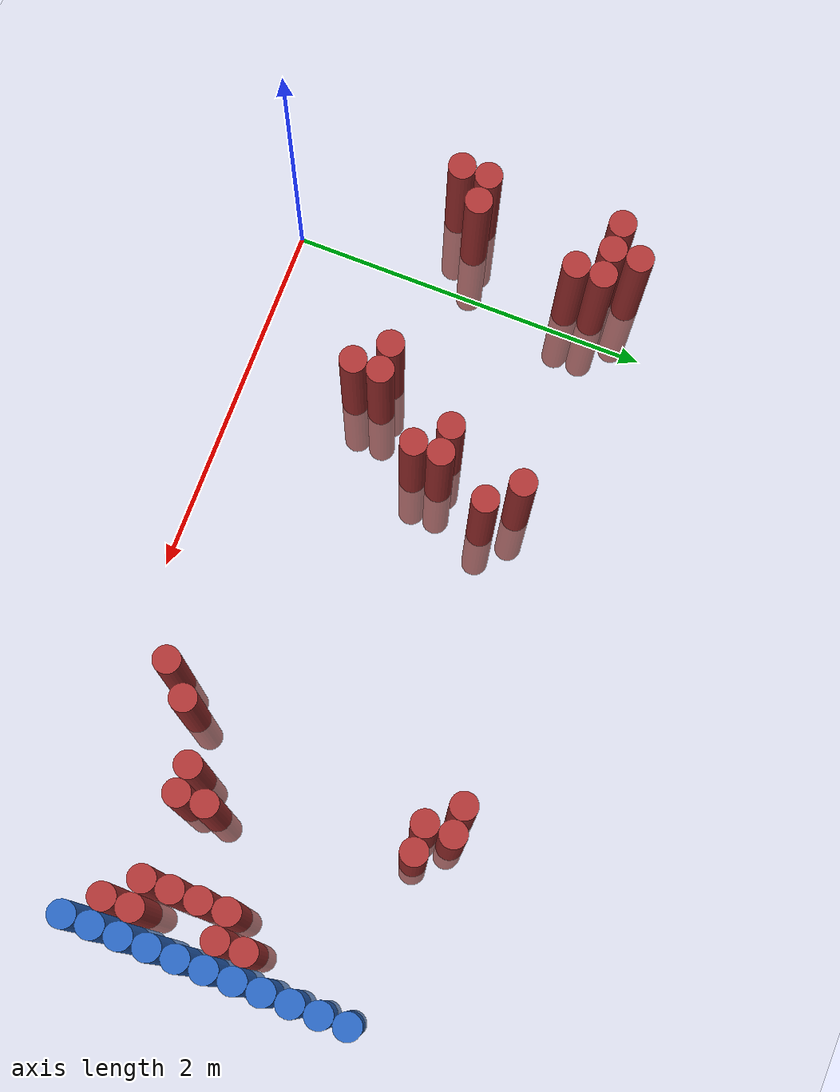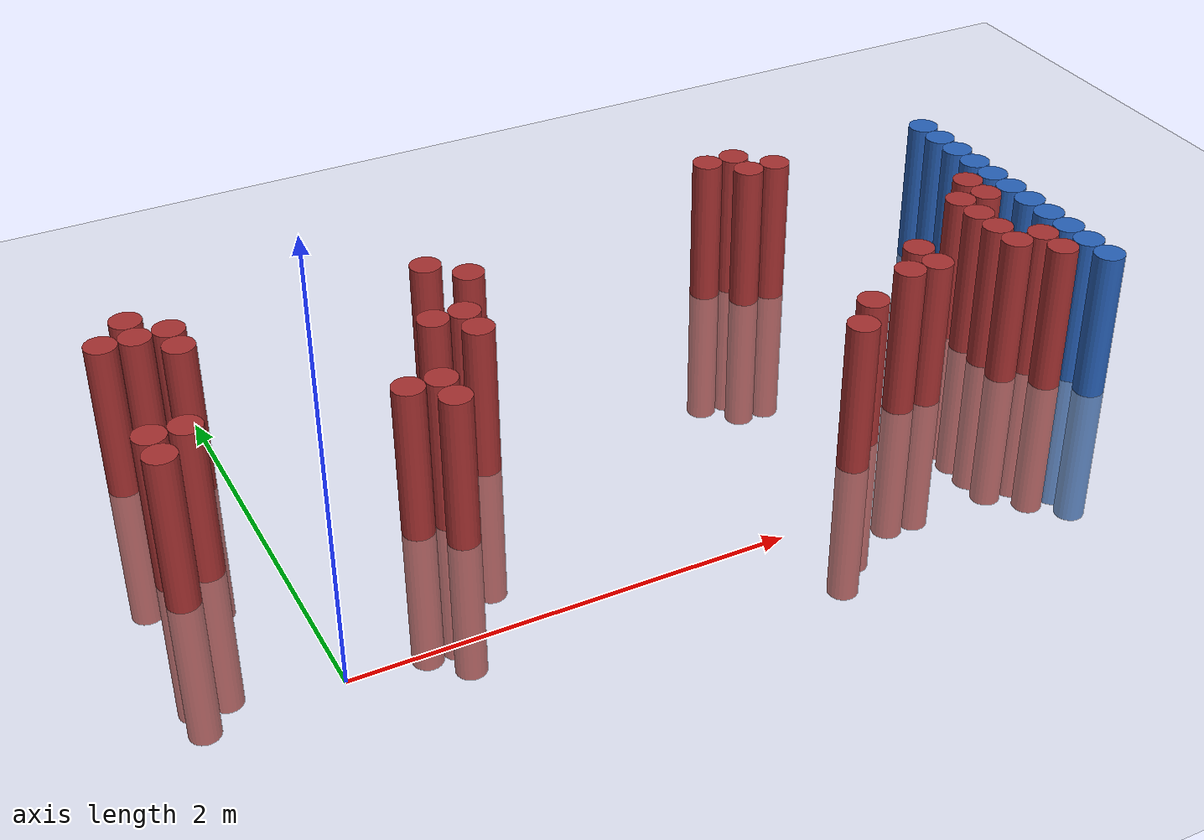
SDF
<sdf version="1.6">
 <world name="default">
  <model name="ground_plane">
   <static>1</static>
   <link name="link">
    <collision name="collision">
     <geometry><plane><normal>0 0 1</normal><size>100 100</size></plane></geometry>
     <surface><friction><ode><mu>100</mu><mu2>50</mu2></ode></friction></surface>
    </collision>
    <visual name="visual">
     <cast_shadows>0</cast_shadows>
     <geometry><plane><normal>0 0 1</normal><size>100 100</size></plane></geometry>
     <material>
      <script><uri>file://media/materials/scripts/gazebo.material</uri><name>Gazebo/Grey</name></script>
     </material>
    </visual>
   </link>
  </model>
  <model name="unit_cylinder_120">
   <static>1</static>
   <pose>3.925000 0.475000 0.000000 0.000000 0.000000 0.000000</pose>
   <link name="link">
    <inertial>
     <mass>1</mass>
     <inertia><ixx>0.145833</ixx><ixy>0</ixy><ixz>0</ixz><iyy>0.145833</iyy><iyz>0</iyz><izz>0.125</izz></inertia>
    </inertial>
    <collision name="collision">
     <geometry><cylinder><radius>0.075000</radius><length>1.5</length></cylinder></geometry>
    </collision>
    <visual name="visual">
     <geometry><cylinder><radius>0.075000</radius><length>1.5</length></cylinder></geometry>
     <material>
      <ambient>0.152000 0.379000 0.720000 1</ambient>
      <diffuse>0.152000 0.379000 0.720000 1</diffuse>
     </material>
     <material>
      <script><name>Gazebo/Grey</name><uri>file://media/materials/scripts/gazebo.material</uri></script>
     </material>
    </visual>
   </link>
  </model>
  <model name="unit_cylinder_122">
   <static>1</static>
   <pose>3.925000 0.625000 0.000000 0.000000 0.000000 0.000000</pose>
   <link name="link">
    <inertial>
     <mass>1</mass>
     <inertia><ixx>0.145833</ixx><ixy>0</ixy><ixz>0</ixz><iyy>0.145833</iyy><iyz>0</iyz><izz>0.125</izz></inertia>
    </inertial>
    <collision name="collision">
     <geometry><cylinder><radius>0.075000</radius><length>1.5</length></cylinder></geometry>
    </collision>
    <visual name="visual">
     <geometry><cylinder><radius>0.075000</radius><length>1.5</length></cylinder></geometry>
     <material>
      <ambient>0.152000 0.379000 0.720000 1</ambient>
      <diffuse>0.152000 0.379000 0.720000 1</diffuse>
     </material>
     <material>
      <script><name>Gazebo/Grey</name><uri>file://media/materials/scripts/gazebo.material</uri></script>
     </material>
    </visual>
   </link>
  </model>
  <model name="unit_cylinder_124">
   <static>1</static>
   <pose>3.925000 0.775000 0.000000 0.000000 0.000000 0.000000</pose>
   <link name="link">
    <inertial>
     <mass>1</mass>
     <inertia><ixx>0.145833</ixx><ixy>0</ixy><ixz>0</ixz><iyy>0.145833</iyy><iyz>0</iyz><izz>0.125</izz></inertia>
    </inertial>
    <collision name="collision">
     <geometry><cylinder><radius>0.075000</radius><length>1.5</length></cylinder></geometry>
    </collision>
    <visual name="visual">
     <geometry><cylinder><radius>0.075000</radius><length>1.5</length></cylinder></geometry>
     <material>
      <ambient>0.152000 0.379000 0.720000 1</ambient>
      <diffuse>0.152000 0.379000 0.720000 1</diffuse>
     </material>
     <material>
      <script><name>Gazebo/Grey</name><uri>file://media/materials/scripts/gazebo.material</uri></script>
     </material>
    </visual>
   </link>
  </model>
  <model name="unit_cylinder_126">
   <static>1</static>
   <pose>3.925000 0.925000 0.000000 0.000000 0.000000 0.000000</pose>
   <link name="link">
    <inertial>
     <mass>1</mass>
     <inertia><ixx>0.145833</ixx><ixy>0</ixy><ixz>0</ixz><iyy>0.145833</iyy><iyz>0</iyz><izz>0.125</izz></inertia>
    </inertial>
    <collision name="collision">
     <geometry><cylinder><radius>0.075000</radius><length>1.5</length></cylinder></geometry>
    </collision>
    <visual name="visual">
     <geometry><cylinder><radius>0.075000</radius><length>1.5</length></cylinder></geometry>
     <material>
      <ambient>0.152000 0.379000 0.720000 1</ambient>
      <diffuse>0.152000 0.379000 0.720000 1</diffuse>
     </material>
     <material>
      <script><name>Gazebo/Grey</name><uri>file://media/materials/scripts/gazebo.material</uri></script>
     </material>
    </visual>
   </link>
  </model>
  <model name="unit_cylinder_128">
   <static>1</static>
   <pose>3.925000 1.075000 0.000000 0.000000 0.000000 0.000000</pose>
   <link name="link">
    <inertial>
     <mass>1</mass>
     <inertia><ixx>0.145833</ixx><ixy>0</ixy><ixz>0</ixz><iyy>0.145833</iyy><iyz>0</iyz><izz>0.125</izz></inertia>
    </inertial>
    <collision name="collision">
     <geometry><cylinder><radius>0.075000</radius><length>1.5</length></cylinder></geometry>
    </collision>
    <visual name="visual">
     <geometry><cylinder><radius>0.075000</radius><length>1.5</length></cylinder></geometry>
     <material>
      <ambient>0.152000 0.379000 0.720000 1</ambient>
      <diffuse>0.152000 0.379000 0.720000 1</diffuse>
     </material>
     <material>
      <script><name>Gazebo/Grey</name><uri>file://media/materials/scripts/gazebo.material</uri></script>
     </material>
    </visual>
   </link>
  </model>
  <model name="unit_cylinder_130">
   <static>1</static>
   <pose>3.925000 1.225000 0.000000 0.000000 0.000000 0.000000</pose>
   <link name="link">
    <inertial>
     <mass>1</mass>
     <inertia><ixx>0.145833</ixx><ixy>0</ixy><ixz>0</ixz><iyy>0.145833</iyy><iyz>0</iyz><izz>0.125</izz></inertia>
    </inertial>
    <collision name="collision">
     <geometry><cylinder><radius>0.075000</radius><length>1.5</length></cylinder></geometry>
    </collision>
    <visual name="visual">
     <geometry><cylinder><radius>0.075000</radius><length>1.5</length></cylinder></geometry>
     <material>
      <ambient>0.152000 0.379000 0.720000 1</ambient>
      <diffuse>0.152000 0.379000 0.720000 1</diffuse>
     </material>
     <material>
      <script><name>Gazebo/Grey</name><uri>file://media/materials/scripts/gazebo.material</uri></script>
     </material>
    </visual>
   </link>
  </model>
  <model name="unit_cylinder_132">
   <static>1</static>
   <pose>3.925000 1.375000 0.000000 0.000000 0.000000 0.000000</pose>
   <link name="link">
    <inertial>
     <mass>1</mass>
     <inertia><ixx>0.145833</ixx><ixy>0</ixy><ixz>0</ixz><iyy>0.145833</iyy><iyz>0</iyz><izz>0.125</izz></inertia>
    </inertial>
    <collision name="collision">
     <geometry><cylinder><radius>0.075000</radius><length>1.5</length></cylinder></geometry>
    </collision>
    <visual name="visual">
     <geometry><cylinder><radius>0.075000</radius><length>1.5</length></cylinder></geometry>
     <material>
      <ambient>0.152000 0.379000 0.720000 1</ambient>
      <diffuse>0.152000 0.379000 0.720000 1</diffuse>
     </material>
     <material>
      <script><name>Gazebo/Grey</name><uri>file://media/materials/scripts/gazebo.material</uri></script>
     </material>
    </visual>
   </link>
  </model>
  <model name="unit_cylinder_134">
   <static>1</static>
   <pose>3.925000 1.525000 0.000000 0.000000 0.000000 0.000000</pose>
   <link name="link">
    <inertial>
     <mass>1</mass>
     <inertia><ixx>0.145833</ixx><ixy>0</ixy><ixz>0</ixz><iyy>0.145833</iyy><iyz>0</iyz><izz>0.125</izz></inertia>
    </inertial>
    <collision name="collision">
     <geometry><cylinder><radius>0.075000</radius><length>1.5</length></cylinder></geometry>
    </collision>
    <visual name="visual">
     <geometry><cylinder><radius>0.075000</radius><length>1.5</length></cylinder></geometry>
     <material>
      <ambient>0.152000 0.379000 0.720000 1</ambient>
      <diffuse>0.152000 0.379000 0.720000 1</diffuse>
     </material>
     <material>
      <script><name>Gazebo/Grey</name><uri>file://media/materials/scripts/gazebo.material</uri></script>
     </material>
    </visual>
   </link>
  </model>
  <model name="unit_cylinder_136">
   <static>1</static>
   <pose>3.925000 1.675000 0.000000 0.000000 0.000000 0.000000</pose>
   <link name="link">
    <inertial>
     <mass>1</mass>
     <inertia><ixx>0.145833</ixx><ixy>0</ixy><ixz>0</ixz><iyy>0.145833</iyy><iyz>0</iyz><izz>0.125</izz></inertia>
    </inertial>
    <collision name="collision">
     <geometry><cylinder><radius>0.075000</radius><length>1.5</length></cylinder></geometry>
    </collision>
    <visual name="visual">
     <geometry><cylinder><radius>0.075000</radius><length>1.5</length></cylinder></geometry>
     <material>
      <ambient>0.152000 0.379000 0.720000 1</ambient>
      <diffuse>0.152000 0.379000 0.720000 1</diffuse>
     </material>
     <material>
      <script><name>Gazebo/Grey</name><uri>file://media/materials/scripts/gazebo.material</uri></script>
     </material>
    </visual>
   </link>
  </model>
  <model name="unit_cylinder_138">
   <static>1</static>
   <pose>3.925000 1.825000 0.000000 0.000000 0.000000 0.000000</pose>
   <link name="link">
    <inertial>
     <mass>1</mass>
     <inertia><ixx>0.145833</ixx><ixy>0</ixy><ixz>0</ixz><iyy>0.145833</iyy><iyz>0</iyz><izz>0.125</izz></inertia>
    </inertial>
    <collision name="collision">
     <geometry><cylinder><radius>0.075000</radius><length>1.5</length></cylinder></geometry>
    </collision>
    <visual name="visual">
     <geometry><cylinder><radius>0.075000</radius><length>1.5</length></cylinder></geometry>
     <material>
      <ambient>0.152000 0.379000 0.720000 1</ambient>
      <diffuse>0.152000 0.379000 0.720000 1</diffuse>
     </material>
     <material>
      <script><name>Gazebo/Grey</name><uri>file://media/materials/scripts/gazebo.material</uri></script>
     </material>
    </visual>
   </link>
  </model>
  <model name="unit_cylinder_315">
   <static>1</static>
   <pose>-0.425000 0.775000 0.000000 0.000000 0.000000 0.000000</pose>
   <link name="link">
    <inertial>
     <mass>1</mass>
     <inertia><ixx>0.145833</ixx><ixy>0</ixy><ixz>0</ixz><iyy>0.145833</iyy><iyz>0</iyz><izz>0.125</izz></inertia>
    </inertial>
    <collision name="collision">
     <geometry><cylinder><radius>0.075000</radius><length>1.5</length></cylinder></geometry>
    </collision>
    <visual name="visual">
     <geometry><cylinder><radius>0.075000</radius><length>1.5</length></cylinder></geometry>
     <material>
      <ambient>0.648000 0.192000 0.192000 1</ambient>
      <diffuse>0.648000 0.192000 0.192000 1</diffuse>
     </material>
     <material>
      <script><name>Gazebo/Grey</name><uri>file://media/materials/scripts/gazebo.material</uri></script>
     </material>
    </visual>
   </link>
  </model>
  <model name="unit_cylinder_316">
   <static>1</static>
   <pose>-0.425000 0.925000 0.000000 0.000000 0.000000 0.000000</pose>
   <link name="link">
    <inertial>
     <mass>1</mass>
     <inertia><ixx>0.145833</ixx><ixy>0</ixy><ixz>0</ixz><iyy>0.145833</iyy><iyz>0</iyz><izz>0.125</izz></inertia>
    </inertial>
    <collision name="collision">
     <geometry><cylinder><radius>0.075000</radius><length>1.5</length></cylinder></geometry>
    </collision>
    <visual name="visual">
     <geometry><cylinder><radius>0.075000</radius><length>1.5</length></cylinder></geometry>
     <material>
      <ambient>0.648000 0.192000 0.192000 1</ambient>
      <diffuse>0.648000 0.192000 0.192000 1</diffuse>
     </material>
     <material>
      <script><name>Gazebo/Grey</name><uri>file://media/materials/scripts/gazebo.material</uri></script>
     </material>
    </visual>
   </link>
  </model>
  <model name="unit_cylinder_317">
   <static>1</static>
   <pose>-0.425000 1.675000 0.000000 0.000000 0.000000 0.000000</pose>
   <link name="link">
    <inertial>
     <mass>1</mass>
     <inertia><ixx>0.145833</ixx><ixy>0</ixy><ixz>0</ixz><iyy>0.145833</iyy><iyz>0</iyz><izz>0.125</izz></inertia>
    </inertial>
    <collision name="collision">
     <geometry><cylinder><radius>0.075000</radius><length>1.5</length></cylinder></geometry>
    </collision>
    <visual name="visual">
     <geometry><cylinder><radius>0.075000</radius><length>1.5</length></cylinder></geometry>
     <material>
      <ambient>0.648000 0.192000 0.192000 1</ambient>
      <diffuse>0.648000 0.192000 0.192000 1</diffuse>
     </material>
     <material>
      <script><name>Gazebo/Grey</name><uri>file://media/materials/scripts/gazebo.material</uri></script>
     </material>
    </visual>
   </link>
  </model>
  <model name="unit_cylinder_324">
   <static>1</static>
   <pose>-0.275000 0.925000 0.000000 0.000000 0.000000 0.000000</pose>
   <link name="link">
    <inertial>
     <mass>1</mass>
     <inertia><ixx>0.145833</ixx><ixy>0</ixy><ixz>0</ixz><iyy>0.145833</iyy><iyz>0</iyz><izz>0.125</izz></inertia>
    </inertial>
    <collision name="collision">
     <geometry><cylinder><radius>0.075000</radius><length>1.5</length></cylinder></geometry>
    </collision>
    <visual name="visual">
     <geometry><cylinder><radius>0.075000</radius><length>1.5</length></cylinder></geometry>
     <material>
      <ambient>0.648000 0.192000 0.192000 1</ambient>
      <diffuse>0.648000 0.192000 0.192000 1</diffuse>
     </material>
     <material>
      <script><name>Gazebo/Grey</name><uri>file://media/materials/scripts/gazebo.material</uri></script>
     </material>
    </visual>
   </link>
  </model>
  <model name="unit_cylinder_325">
   <static>1</static>
   <pose>-0.275000 1.675000 0.000000 0.000000 0.000000 0.000000</pose>
   <link name="link">
    <inertial>
     <mass>1</mass>
     <inertia><ixx>0.145833</ixx><ixy>0</ixy><ixz>0</ixz><iyy>0.145833</iyy><iyz>0</iyz><izz>0.125</izz></inertia>
    </inertial>
    <collision name="collision">
     <geometry><cylinder><radius>0.075000</radius><length>1.5</length></cylinder></geometry>
    </collision>
    <visual name="visual">
     <geometry><cylinder><radius>0.075000</radius><length>1.5</length></cylinder></geometry>
     <material>
      <ambient>0.648000 0.192000 0.192000 1</ambient>
      <diffuse>0.648000 0.192000 0.192000 1</diffuse>
     </material>
     <material>
      <script><name>Gazebo/Grey</name><uri>file://media/materials/scripts/gazebo.material</uri></script>
     </material>
    </visual>
   </link>
  </model>
  <model name="unit_cylinder_326">
   <static>1</static>
   <pose>-0.275000 1.825000 0.000000 0.000000 0.000000 0.000000</pose>
   <link name="link">
    <inertial>
     <mass>1</mass>
     <inertia><ixx>0.145833</ixx><ixy>0</ixy><ixz>0</ixz><iyy>0.145833</iyy><iyz>0</iyz><izz>0.125</izz></inertia>
    </inertial>
    <collision name="collision">
     <geometry><cylinder><radius>0.075000</radius><length>1.5</length></cylinder></geometry>
    </collision>
    <visual name="visual">
     <geometry><cylinder><radius>0.075000</radius><length>1.5</length></cylinder></geometry>
     <material>
      <ambient>0.648000 0.192000 0.192000 1</ambient>
      <diffuse>0.648000 0.192000 0.192000 1</diffuse>
     </material>
     <material>
      <script><name>Gazebo/Grey</name><uri>file://media/materials/scripts/gazebo.material</uri></script>
     </material>
    </visual>
   </link>
  </model>
  <model name="unit_cylinder_327">
   <static>1</static>
   <pose>-0.125000 1.525000 0.000000 0.000000 0.000000 0.000000</pose>
   <link name="link">
    <inertial>
     <mass>1</mass>
     <inertia><ixx>0.145833</ixx><ixy>0</ixy><ixz>0</ixz><iyy>0.145833</iyy><iyz>0</iyz><izz>0.125</izz></inertia>
    </inertial>
    <collision name="collision">
     <geometry><cylinder><radius>0.075000</radius><length>1.5</length></cylinder></geometry>
    </collision>
    <visual name="visual">
     <geometry><cylinder><radius>0.075000</radius><length>1.5</length></cylinder></geometry>
     <material>
      <ambient>0.648000 0.192000 0.192000 1</ambient>
      <diffuse>0.648000 0.192000 0.192000 1</diffuse>
     </material>
     <material>
      <script><name>Gazebo/Grey</name><uri>file://media/materials/scripts/gazebo.material</uri></script>
     </material>
    </visual>
   </link>
  </model>
  <model name="unit_cylinder_328">
   <static>1</static>
   <pose>-0.125000 1.675000 0.000000 0.000000 0.000000 0.000000</pose>
   <link name="link">
    <inertial>
     <mass>1</mass>
     <inertia><ixx>0.145833</ixx><ixy>0</ixy><ixz>0</ixz><iyy>0.145833</iyy><iyz>0</iyz><izz>0.125</izz></inertia>
    </inertial>
    <collision name="collision">
     <geometry><cylinder><radius>0.075000</radius><length>1.5</length></cylinder></geometry>
    </collision>
    <visual name="visual">
     <geometry><cylinder><radius>0.075000</radius><length>1.5</length></cylinder></geometry>
     <material>
      <ambient>0.648000 0.192000 0.192000 1</ambient>
      <diffuse>0.648000 0.192000 0.192000 1</diffuse>
     </material>
     <material>
      <script><name>Gazebo/Grey</name><uri>file://media/materials/scripts/gazebo.material</uri></script>
     </material>
    </visual>
   </link>
  </model>
  <model name="unit_cylinder_332">
   <static>1</static>
   <pose>0.625000 0.775000 0.000000 0.000000 0.000000 0.000000</pose>
   <link name="link">
    <inertial>
     <mass>1</mass>
     <inertia><ixx>0.145833</ixx><ixy>0</ixy><ixz>0</ixz><iyy>0.145833</iyy><iyz>0</iyz><izz>0.125</izz></inertia>
    </inertial>
    <collision name="collision">
     <geometry><cylinder><radius>0.075000</radius><length>1.5</length></cylinder></geometry>
    </collision>
    <visual name="visual">
     <geometry><cylinder><radius>0.075000</radius><length>1.5</length></cylinder></geometry>
     <material>
      <ambient>0.648000 0.192000 0.192000 1</ambient>
      <diffuse>0.648000 0.192000 0.192000 1</diffuse>
     </material>
     <material>
      <script><name>Gazebo/Grey</name><uri>file://media/materials/scripts/gazebo.material</uri></script>
     </material>
    </visual>
   </link>
  </model>
  <model name="unit_cylinder_334">
   <static>1</static>
   <pose>0.775000 0.625000 0.000000 0.000000 0.000000 0.000000</pose>
   <link name="link">
    <inertial>
     <mass>1</mass>
     <inertia><ixx>0.145833</ixx><ixy>0</ixy><ixz>0</ixz><iyy>0.145833</iyy><iyz>0</iyz><izz>0.125</izz></inertia>
    </inertial>
    <collision name="collision">
     <geometry><cylinder><radius>0.075000</radius><length>1.5</length></cylinder></geometry>
    </collision>
    <visual name="visual">
     <geometry><cylinder><radius>0.075000</radius><length>1.5</length></cylinder></geometry>
     <material>
      <ambient>0.648000 0.192000 0.192000 1</ambient>
      <diffuse>0.648000 0.192000 0.192000 1</diffuse>
     </material>
     <material>
      <script><name>Gazebo/Grey</name><uri>file://media/materials/scripts/gazebo.material</uri></script>
     </material>
    </visual>
   </link>
  </model>
  <model name="unit_cylinder_335">
   <static>1</static>
   <pose>0.775000 0.775000 0.000000 0.000000 0.000000 0.000000</pose>
   <link name="link">
    <inertial>
     <mass>1</mass>
     <inertia><ixx>0.145833</ixx><ixy>0</ixy><ixz>0</ixz><iyy>0.145833</iyy><iyz>0</iyz><izz>0.125</izz></inertia>
    </inertial>
    <collision name="collision">
     <geometry><cylinder><radius>0.075000</radius><length>1.5</length></cylinder></geometry>
    </collision>
    <visual name="visual">
     <geometry><cylinder><radius>0.075000</radius><length>1.5</length></cylinder></geometry>
     <material>
      <ambient>0.648000 0.192000 0.192000 1</ambient>
      <diffuse>0.648000 0.192000 0.192000 1</diffuse>
     </material>
     <material>
      <script><name>Gazebo/Grey</name><uri>file://media/materials/scripts/gazebo.material</uri></script>
     </material>
    </visual>
   </link>
  </model>
  <model name="unit_cylinder_337">
   <static>1</static>
   <pose>0.925000 1.225000 0.000000 0.000000 0.000000 0.000000</pose>
   <link name="link">
    <inertial>
     <mass>1</mass>
     <inertia><ixx>0.145833</ixx><ixy>0</ixy><ixz>0</ixz><iyy>0.145833</iyy><iyz>0</iyz><izz>0.125</izz></inertia>
    </inertial>
    <collision name="collision">
     <geometry><cylinder><radius>0.075000</radius><length>1.5</length></cylinder></geometry>
    </collision>
    <visual name="visual">
     <geometry><cylinder><radius>0.075000</radius><length>1.5</length></cylinder></geometry>
     <material>
      <ambient>0.648000 0.192000 0.192000 1</ambient>
      <diffuse>0.648000 0.192000 0.192000 1</diffuse>
     </material>
     <material>
      <script><name>Gazebo/Grey</name><uri>file://media/materials/scripts/gazebo.material</uri></script>
     </material>
    </visual>
   </link>
  </model>
  <model name="unit_cylinder_344">
   <static>1</static>
   <pose>1.075000 1.075000 0.000000 0.000000 0.000000 0.000000</pose>
   <link name="link">
    <inertial>
     <mass>1</mass>
     <inertia><ixx>0.145833</ixx><ixy>0</ixy><ixz>0</ixz><iyy>0.145833</iyy><iyz>0</iyz><izz>0.125</izz></inertia>
    </inertial>
    <collision name="collision">
     <geometry><cylinder><radius>0.075000</radius><length>1.5</length></cylinder></geometry>
    </collision>
    <visual name="visual">
     <geometry><cylinder><radius>0.075000</radius><length>1.5</length></cylinder></geometry>
     <material>
      <ambient>0.648000 0.192000 0.192000 1</ambient>
      <diffuse>0.648000 0.192000 0.192000 1</diffuse>
     </material>
     <material>
      <script><name>Gazebo/Grey</name><uri>file://media/materials/scripts/gazebo.material</uri></script>
     </material>
    </visual>
   </link>
  </model>
  <model name="unit_cylinder_345">
   <static>1</static>
   <pose>1.075000 1.225000 0.000000 0.000000 0.000000 0.000000</pose>
   <link name="link">
    <inertial>
     <mass>1</mass>
     <inertia><ixx>0.145833</ixx><ixy>0</ixy><ixz>0</ixz><iyy>0.145833</iyy><iyz>0</iyz><izz>0.125</izz></inertia>
    </inertial>
    <collision name="collision">
     <geometry><cylinder><radius>0.075000</radius><length>1.5</length></cylinder></geometry>
    </collision>
    <visual name="visual">
     <geometry><cylinder><radius>0.075000</radius><length>1.5</length></cylinder></geometry>
     <material>
      <ambient>0.648000 0.192000 0.192000 1</ambient>
      <diffuse>0.648000 0.192000 0.192000 1</diffuse>
     </material>
     <material>
      <script><name>Gazebo/Grey</name><uri>file://media/materials/scripts/gazebo.material</uri></script>
     </material>
    </visual>
   </link>
  </model>
  <model name="unit_cylinder_346">
   <static>1</static>
   <pose>1.075000 1.675000 0.000000 0.000000 0.000000 0.000000</pose>
   <link name="link">
    <inertial>
     <mass>1</mass>
     <inertia><ixx>0.145833</ixx><ixy>0</ixy><ixz>0</ixz><iyy>0.145833</iyy><iyz>0</iyz><izz>0.125</izz></inertia>
    </inertial>
    <collision name="collision">
     <geometry><cylinder><radius>0.075000</radius><length>1.5</length></cylinder></geometry>
    </collision>
    <visual name="visual">
     <geometry><cylinder><radius>0.075000</radius><length>1.5</length></cylinder></geometry>
     <material>
      <ambient>0.648000 0.192000 0.192000 1</ambient>
      <diffuse>0.648000 0.192000 0.192000 1</diffuse>
     </material>
     <material>
      <script><name>Gazebo/Grey</name><uri>file://media/materials/scripts/gazebo.material</uri></script>
     </material>
    </visual>
   </link>
  </model>
  <model name="unit_cylinder_349">
   <static>1</static>
   <pose>1.225000 1.525000 0.000000 0.000000 0.000000 0.000000</pose>
   <link name="link">
    <inertial>
     <mass>1</mass>
     <inertia><ixx>0.145833</ixx><ixy>0</ixy><ixz>0</ixz><iyy>0.145833</iyy><iyz>0</iyz><izz>0.125</izz></inertia>
    </inertial>
    <collision name="collision">
     <geometry><cylinder><radius>0.075000</radius><length>1.5</length></cylinder></geometry>
    </collision>
    <visual name="visual">
     <geometry><cylinder><radius>0.075000</radius><length>1.5</length></cylinder></geometry>
     <material>
      <ambient>0.648000 0.192000 0.192000 1</ambient>
      <diffuse>0.648000 0.192000 0.192000 1</diffuse>
     </material>
     <material>
      <script><name>Gazebo/Grey</name><uri>file://media/materials/scripts/gazebo.material</uri></script>
     </material>
    </visual>
   </link>
  </model>
  <model name="unit_cylinder_382">
   <static>1</static>
   <pose>2.575000 0.325000 0.000000 0.000000 0.000000 0.000000</pose>
   <link name="link">
    <inertial>
     <mass>1</mass>
     <inertia><ixx>0.145833</ixx><ixy>0</ixy><ixz>0</ixz><iyy>0.145833</iyy><iyz>0</iyz><izz>0.125</izz></inertia>
    </inertial>
    <collision name="collision">
     <geometry><cylinder><radius>0.075000</radius><length>1.5</length></cylinder></geometry>
    </collision>
    <visual name="visual">
     <geometry><cylinder><radius>0.075000</radius><length>1.5</length></cylinder></geometry>
     <material>
      <ambient>0.648000 0.192000 0.192000 1</ambient>
      <diffuse>0.648000 0.192000 0.192000 1</diffuse>
     </material>
     <material>
      <script><name>Gazebo/Grey</name><uri>file://media/materials/scripts/gazebo.material</uri></script>
     </material>
    </visual>
   </link>
  </model>
  <model name="unit_cylinder_384">
   <static>1</static>
   <pose>2.725000 0.475000 0.000000 0.000000 0.000000 0.000000</pose>
   <link name="link">
    <inertial>
     <mass>1</mass>
     <inertia><ixx>0.145833</ixx><ixy>0</ixy><ixz>0</ixz><iyy>0.145833</iyy><iyz>0</iyz><izz>0.125</izz></inertia>
    </inertial>
    <collision name="collision">
     <geometry><cylinder><radius>0.075000</radius><length>1.5</length></cylinder></geometry>
    </collision>
    <visual name="visual">
     <geometry><cylinder><radius>0.075000</radius><length>1.5</length></cylinder></geometry>
     <material>
      <ambient>0.648000 0.192000 0.192000 1</ambient>
      <diffuse>0.648000 0.192000 0.192000 1</diffuse>
     </material>
     <material>
      <script><name>Gazebo/Grey</name><uri>file://media/materials/scripts/gazebo.material</uri></script>
     </material>
    </visual>
   </link>
  </model>
  <model name="unit_cylinder_385">
   <static>1</static>
   <pose>2.725000 1.975000 0.000000 0.000000 0.000000 0.000000</pose>
   <link name="link">
    <inertial>
     <mass>1</mass>
     <inertia><ixx>0.145833</ixx><ixy>0</ixy><ixz>0</ixz><iyy>0.145833</iyy><iyz>0</iyz><izz>0.125</izz></inertia>
    </inertial>
    <collision name="collision">
     <geometry><cylinder><radius>0.075000</radius><length>1.5</length></cylinder></geometry>
    </collision>
    <visual name="visual">
     <geometry><cylinder><radius>0.075000</radius><length>1.5</length></cylinder></geometry>
     <material>
      <ambient>0.648000 0.192000 0.192000 1</ambient>
      <diffuse>0.648000 0.192000 0.192000 1</diffuse>
     </material>
     <material>
      <script><name>Gazebo/Grey</name><uri>file://media/materials/scripts/gazebo.material</uri></script>
     </material>
    </visual>
   </link>
  </model>
  <model name="unit_cylinder_388">
   <static>1</static>
   <pose>2.875000 1.825000 0.000000 0.000000 0.000000 0.000000</pose>
   <link name="link">
    <inertial>
     <mass>1</mass>
     <inertia><ixx>0.145833</ixx><ixy>0</ixy><ixz>0</ixz><iyy>0.145833</iyy><iyz>0</iyz><izz>0.125</izz></inertia>
    </inertial>
    <collision name="collision">
     <geometry><cylinder><radius>0.075000</radius><length>1.5</length></cylinder></geometry>
    </collision>
    <visual name="visual">
     <geometry><cylinder><radius>0.075000</radius><length>1.5</length></cylinder></geometry>
     <material>
      <ambient>0.648000 0.192000 0.192000 1</ambient>
      <diffuse>0.648000 0.192000 0.192000 1</diffuse>
     </material>
     <material>
      <script><name>Gazebo/Grey</name><uri>file://media/materials/scripts/gazebo.material</uri></script>
     </material>
    </visual>
   </link>
  </model>
  <model name="unit_cylinder_389">
   <static>1</static>
   <pose>2.875000 1.975000 0.000000 0.000000 0.000000 0.000000</pose>
   <link name="link">
    <inertial>
     <mass>1</mass>
     <inertia><ixx>0.145833</ixx><ixy>0</ixy><ixz>0</ixz><iyy>0.145833</iyy><iyz>0</iyz><izz>0.125</izz></inertia>
    </inertial>
    <collision name="collision">
     <geometry><cylinder><radius>0.075000</radius><length>1.5</length></cylinder></geometry>
    </collision>
    <visual name="visual">
     <geometry><cylinder><radius>0.075000</radius><length>1.5</length></cylinder></geometry>
     <material>
      <ambient>0.648000 0.192000 0.192000 1</ambient>
      <diffuse>0.648000 0.192000 0.192000 1</diffuse>
     </material>
     <material>
      <script><name>Gazebo/Grey</name><uri>file://media/materials/scripts/gazebo.material</uri></script>
     </material>
    </visual>
   </link>
  </model>
  <model name="unit_cylinder_396">
   <static>1</static>
   <pose>3.025000 0.625000 0.000000 0.000000 0.000000 0.000000</pose>
   <link name="link">
    <inertial>
     <mass>1</mass>
     <inertia><ixx>0.145833</ixx><ixy>0</ixy><ixz>0</ixz><iyy>0.145833</iyy><iyz>0</iyz><izz>0.125</izz></inertia>
    </inertial>
    <collision name="collision">
     <geometry><cylinder><radius>0.075000</radius><length>1.5</length></cylinder></geometry>
    </collision>
    <visual name="visual">
     <geometry><cylinder><radius>0.075000</radius><length>1.5</length></cylinder></geometry>
     <material>
      <ambient>0.648000 0.192000 0.192000 1</ambient>
      <diffuse>0.648000 0.192000 0.192000 1</diffuse>
     </material>
     <material>
      <script><name>Gazebo/Grey</name><uri>file://media/materials/scripts/gazebo.material</uri></script>
     </material>
    </visual>
   </link>
  </model>
  <model name="unit_cylinder_397">
   <static>1</static>
   <pose>3.025000 1.825000 0.000000 0.000000 0.000000 0.000000</pose>
   <link name="link">
    <inertial>
     <mass>1</mass>
     <inertia><ixx>0.145833</ixx><ixy>0</ixy><ixz>0</ixz><iyy>0.145833</iyy><iyz>0</iyz><izz>0.125</izz></inertia>
    </inertial>
    <collision name="collision">
     <geometry><cylinder><radius>0.075000</radius><length>1.5</length></cylinder></geometry>
    </collision>
    <visual name="visual">
     <geometry><cylinder><radius>0.075000</radius><length>1.5</length></cylinder></geometry>
     <material>
      <ambient>0.648000 0.192000 0.192000 1</ambient>
      <diffuse>0.648000 0.192000 0.192000 1</diffuse>
     </material>
     <material>
      <script><name>Gazebo/Grey</name><uri>file://media/materials/scripts/gazebo.material</uri></script>
     </material>
    </visual>
   </link>
  </model>
  <model name="unit_cylinder_404">
   <static>1</static>
   <pose>3.175000 0.625000 0.000000 0.000000 0.000000 0.000000</pose>
   <link name="link">
    <inertial>
     <mass>1</mass>
     <inertia><ixx>0.145833</ixx><ixy>0</ixy><ixz>0</ixz><iyy>0.145833</iyy><iyz>0</iyz><izz>0.125</izz></inertia>
    </inertial>
    <collision name="collision">
     <geometry><cylinder><radius>0.075000</radius><length>1.5</length></cylinder></geometry>
    </collision>
    <visual name="visual">
     <geometry><cylinder><radius>0.075000</radius><length>1.5</length></cylinder></geometry>
     <material>
      <ambient>0.648000 0.192000 0.192000 1</ambient>
      <diffuse>0.648000 0.192000 0.192000 1</diffuse>
     </material>
     <material>
      <script><name>Gazebo/Grey</name><uri>file://media/materials/scripts/gazebo.material</uri></script>
     </material>
    </visual>
   </link>
  </model>
  <model name="unit_cylinder_405">
   <static>1</static>
   <pose>3.175000 0.775000 0.000000 0.000000 0.000000 0.000000</pose>
   <link name="link">
    <inertial>
     <mass>1</mass>
     <inertia><ixx>0.145833</ixx><ixy>0</ixy><ixz>0</ixz><iyy>0.145833</iyy><iyz>0</iyz><izz>0.125</izz></inertia>
    </inertial>
    <collision name="collision">
     <geometry><cylinder><radius>0.075000</radius><length>1.5</length></cylinder></geometry>
    </collision>
    <visual name="visual">
     <geometry><cylinder><radius>0.075000</radius><length>1.5</length></cylinder></geometry>
     <material>
      <ambient>0.648000 0.192000 0.192000 1</ambient>
      <diffuse>0.648000 0.192000 0.192000 1</diffuse>
     </material>
     <material>
      <script><name>Gazebo/Grey</name><uri>file://media/materials/scripts/gazebo.material</uri></script>
     </material>
    </visual>
   </link>
  </model>
  <model name="unit_cylinder_414">
   <static>1</static>
   <pose>3.625000 0.625000 0.000000 0.000000 0.000000 0.000000</pose>
   <link name="link">
    <inertial>
     <mass>1</mass>
     <inertia><ixx>0.145833</ixx><ixy>0</ixy><ixz>0</ixz><iyy>0.145833</iyy><iyz>0</iyz><izz>0.125</izz></inertia>
    </inertial>
    <collision name="collision">
     <geometry><cylinder><radius>0.075000</radius><length>1.5</length></cylinder></geometry>
    </collision>
    <visual name="visual">
     <geometry><cylinder><radius>0.075000</radius><length>1.5</length></cylinder></geometry>
     <material>
      <ambient>0.648000 0.192000 0.192000 1</ambient>
      <diffuse>0.648000 0.192000 0.192000 1</diffuse>
     </material>
     <material>
      <script><name>Gazebo/Grey</name><uri>file://media/materials/scripts/gazebo.material</uri></script>
     </material>
    </visual>
   </link>
  </model>
  <model name="unit_cylinder_415">
   <static>1</static>
   <pose>3.625000 0.775000 0.000000 0.000000 0.000000 0.000000</pose>
   <link name="link">
    <inertial>
     <mass>1</mass>
     <inertia><ixx>0.145833</ixx><ixy>0</ixy><ixz>0</ixz><iyy>0.145833</iyy><iyz>0</iyz><izz>0.125</izz></inertia>
    </inertial>
    <collision name="collision">
     <geometry><cylinder><radius>0.075000</radius><length>1.5</length></cylinder></geometry>
    </collision>
    <visual name="visual">
     <geometry><cylinder><radius>0.075000</radius><length>1.5</length></cylinder></geometry>
     <material>
      <ambient>0.648000 0.192000 0.192000 1</ambient>
      <diffuse>0.648000 0.192000 0.192000 1</diffuse>
     </material>
     <material>
      <script><name>Gazebo/Grey</name><uri>file://media/materials/scripts/gazebo.material</uri></script>
     </material>
    </visual>
   </link>
  </model>
  <model name="unit_cylinder_416">
   <static>1</static>
   <pose>3.625000 0.925000 0.000000 0.000000 0.000000 0.000000</pose>
   <link name="link">
    <inertial>
     <mass>1</mass>
     <inertia><ixx>0.145833</ixx><ixy>0</ixy><ixz>0</ixz><iyy>0.145833</iyy><iyz>0</iyz><izz>0.125</izz></inertia>
    </inertial>
    <collision name="collision">
     <geometry><cylinder><radius>0.075000</radius><length>1.5</length></cylinder></geometry>
    </collision>
    <visual name="visual">
     <geometry><cylinder><radius>0.075000</radius><length>1.5</length></cylinder></geometry>
     <material>
      <ambient>0.648000 0.192000 0.192000 1</ambient>
      <diffuse>0.648000 0.192000 0.192000 1</diffuse>
     </material>
     <material>
      <script><name>Gazebo/Grey</name><uri>file://media/materials/scripts/gazebo.material</uri></script>
     </material>
    </visual>
   </link>
  </model>
  <model name="unit_cylinder_417">
   <static>1</static>
   <pose>3.625000 1.075000 0.000000 0.000000 0.000000 0.000000</pose>
   <link name="link">
    <inertial>
     <mass>1</mass>
     <inertia><ixx>0.145833</ixx><ixy>0</ixy><ixz>0</ixz><iyy>0.145833</iyy><iyz>0</iyz><izz>0.125</izz></inertia>
    </inertial>
    <collision name="collision">
     <geometry><cylinder><radius>0.075000</radius><length>1.5</length></cylinder></geometry>
    </collision>
    <visual name="visual">
     <geometry><cylinder><radius>0.075000</radius><length>1.5</length></cylinder></geometry>
     <material>
      <ambient>0.648000 0.192000 0.192000 1</ambient>
      <diffuse>0.648000 0.192000 0.192000 1</diffuse>
     </material>
     <material>
      <script><name>Gazebo/Grey</name><uri>file://media/materials/scripts/gazebo.material</uri></script>
     </material>
    </visual>
   </link>
  </model>
  <model name="unit_cylinder_426">
   <static>1</static>
   <pose>3.775000 0.475000 0.000000 0.000000 0.000000 0.000000</pose>
   <link name="link">
    <inertial>
     <mass>1</mass>
     <inertia><ixx>0.145833</ixx><ixy>0</ixy><ixz>0</ixz><iyy>0.145833</iyy><iyz>0</iyz><izz>0.125</izz></inertia>
    </inertial>
    <collision name="collision">
     <geometry><cylinder><radius>0.075000</radius><length>1.5</length></cylinder></geometry>
    </collision>
    <visual name="visual">
     <geometry><cylinder><radius>0.075000</radius><length>1.5</length></cylinder></geometry>
     <material>
      <ambient>0.648000 0.192000 0.192000 1</ambient>
      <diffuse>0.648000 0.192000 0.192000 1</diffuse>
     </material>
     <material>
      <script><name>Gazebo/Grey</name><uri>file://media/materials/scripts/gazebo.material</uri></script>
     </material>
    </visual>
   </link>
  </model>
  <model name="unit_cylinder_427">
   <static>1</static>
   <pose>3.775000 0.625000 0.000000 0.000000 0.000000 0.000000</pose>
   <link name="link">
    <inertial>
     <mass>1</mass>
     <inertia><ixx>0.145833</ixx><ixy>0</ixy><ixz>0</ixz><iyy>0.145833</iyy><iyz>0</iyz><izz>0.125</izz></inertia>
    </inertial>
    <collision name="collision">
     <geometry><cylinder><radius>0.075000</radius><length>1.5</length></cylinder></geometry>
    </collision>
    <visual name="visual">
     <geometry><cylinder><radius>0.075000</radius><length>1.5</length></cylinder></geometry>
     <material>
      <ambient>0.648000 0.192000 0.192000 1</ambient>
      <diffuse>0.648000 0.192000 0.192000 1</diffuse>
     </material>
     <material>
      <script><name>Gazebo/Grey</name><uri>file://media/materials/scripts/gazebo.material</uri></script>
     </material>
    </visual>
   </link>
  </model>
  <model name="unit_cylinder_428">
   <static>1</static>
   <pose>3.775000 1.075000 0.000000 0.000000 0.000000 0.000000</pose>
   <link name="link">
    <inertial>
     <mass>1</mass>
     <inertia><ixx>0.145833</ixx><ixy>0</ixy><ixz>0</ixz><iyy>0.145833</iyy><iyz>0</iyz><izz>0.125</izz></inertia>
    </inertial>
    <collision name="collision">
     <geometry><cylinder><radius>0.075000</radius><length>1.5</length></cylinder></geometry>
    </collision>
    <visual name="visual">
     <geometry><cylinder><radius>0.075000</radius><length>1.5</length></cylinder></geometry>
     <material>
      <ambient>0.648000 0.192000 0.192000 1</ambient>
      <diffuse>0.648000 0.192000 0.192000 1</diffuse>
     </material>
     <material>
      <script><name>Gazebo/Grey</name><uri>file://media/materials/scripts/gazebo.material</uri></script>
     </material>
    </visual>
   </link>
  </model>
  <model name="unit_cylinder_429">
   <static>1</static>
   <pose>3.775000 1.225000 0.000000 0.000000 0.000000 0.000000</pose>
   <link name="link">
    <inertial>
     <mass>1</mass>
     <inertia><ixx>0.145833</ixx><ixy>0</ixy><ixz>0</ixz><iyy>0.145833</iyy><iyz>0</iyz><izz>0.125</izz></inertia>
    </inertial>
    <collision name="collision">
     <geometry><cylinder><radius>0.075000</radius><length>1.5</length></cylinder></geometry>
    </collision>
    <visual name="visual">
     <geometry><cylinder><radius>0.075000</radius><length>1.5</length></cylinder></geometry>
     <material>
      <ambient>0.648000 0.192000 0.192000 1</ambient>
      <diffuse>0.648000 0.192000 0.192000 1</diffuse>
     </material>
     <material>
      <script><name>Gazebo/Grey</name><uri>file://media/materials/scripts/gazebo.material</uri></script>
     </material>
    </visual>
   </link>
  </model>
  <model name="unit_cylinder_448">
   <static>1</static>
   <pose>3.925000 0.325000 0.000000 0.000000 0.000000 0.000000</pose>
   <link name="link">
    <inertial>
     <mass>1</mass>
     <inertia><ixx>0.145833</ixx><ixy>0</ixy><ixz>0</ixz><iyy>0.145833</iyy><iyz>0</iyz><izz>0.125</izz></inertia>
    </inertial>
    <collision name="collision">
     <geometry><cylinder><radius>0.075000</radius><length>1.5</length></cylinder></geometry>
    </collision>
    <visual name="visual">
     <geometry><cylinder><radius>0.075000</radius><length>1.5</length></cylinder></geometry>
     <material>
      <ambient>0.152000 0.379000 0.720000 1</ambient>
      <diffuse>0.152000 0.379000 0.720000 1</diffuse>
     </material>
     <material>
      <script><name>Gazebo/Grey</name><uri>file://media/materials/scripts/gazebo.material</uri></script>
     </material>
    </visual>
   </link>
  </model>
  <model name="unit_cylinder_449">
   <static>1</static>
   <pose>3.925000 0.475000 0.000000 0.000000 0.000000 0.000000</pose>
   <link name="link">
    <inertial>
     <mass>1</mass>
     <inertia><ixx>0.145833</ixx><ixy>0</ixy><ixz>0</ixz><iyy>0.145833</iyy><iyz>0</iyz><izz>0.125</izz></inertia>
    </inertial>
    <collision name="collision">
     <geometry><cylinder><radius>0.075000</radius><length>1.5</length></cylinder></geometry>
    </collision>
    <visual name="visual">
     <geometry><cylinder><radius>0.075000</radius><length>1.5</length></cylinder></geometry>
     <material>
      <ambient>0.152000 0.379000 0.720000 1</ambient>
      <diffuse>0.152000 0.379000 0.720000 1</diffuse>
     </material>
     <material>
      <script><name>Gazebo/Grey</name><uri>file://media/materials/scripts/gazebo.material</uri></script>
     </material>
    </visual>
   </link>
  </model>
  <model name="unit_cylinder_450">
   <static>1</static>
   <pose>3.925000 0.625000 0.000000 0.000000 0.000000 0.000000</pose>
   <link name="link">
    <inertial>
     <mass>1</mass>
     <inertia><ixx>0.145833</ixx><ixy>0</ixy><ixz>0</ixz><iyy>0.145833</iyy><iyz>0</iyz><izz>0.125</izz></inertia>
    </inertial>
    <collision name="collision">
     <geometry><cylinder><radius>0.075000</radius><length>1.5</length></cylinder></geometry>
    </collision>
    <visual name="visual">
     <geometry><cylinder><radius>0.075000</radius><length>1.5</length></cylinder></geometry>
     <material>
      <ambient>0.152000 0.379000 0.720000 1</ambient>
      <diffuse>0.152000 0.379000 0.720000 1</diffuse>
     </material>
     <material>
      <script><name>Gazebo/Grey</name><uri>file://media/materials/scripts/gazebo.material</uri></script>
     </material>
    </visual>
   </link>
  </model>
  <model name="unit_cylinder_451">
   <static>1</static>
   <pose>3.925000 0.775000 0.000000 0.000000 0.000000 0.000000</pose>
   <link name="link">
    <inertial>
     <mass>1</mass>
     <inertia><ixx>0.145833</ixx><ixy>0</ixy><ixz>0</ixz><iyy>0.145833</iyy><iyz>0</iyz><izz>0.125</izz></inertia>
    </inertial>
    <collision name="collision">
     <geometry><cylinder><radius>0.075000</radius><length>1.5</length></cylinder></geometry>
    </collision>
    <visual name="visual">
     <geometry><cylinder><radius>0.075000</radius><length>1.5</length></cylinder></geometry>
     <material>
      <ambient>0.152000 0.379000 0.720000 1</ambient>
      <diffuse>0.152000 0.379000 0.720000 1</diffuse>
     </material>
     <material>
      <script><name>Gazebo/Grey</name><uri>file://media/materials/scripts/gazebo.material</uri></script>
     </material>
    </visual>
   </link>
  </model>
  <model name="unit_cylinder_452">
   <static>1</static>
   <pose>3.925000 0.925000 0.000000 0.000000 0.000000 0.000000</pose>
   <link name="link">
    <inertial>
     <mass>1</mass>
     <inertia><ixx>0.145833</ixx><ixy>0</ixy><ixz>0</ixz><iyy>0.145833</iyy><iyz>0</iyz><izz>0.125</izz></inertia>
    </inertial>
    <collision name="collision">
     <geometry><cylinder><radius>0.075000</radius><length>1.5</length></cylinder></geometry>
    </collision>
    <visual name="visual">
     <geometry><cylinder><radius>0.075000</radius><length>1.5</length></cylinder></geometry>
     <material>
      <ambient>0.152000 0.379000 0.720000 1</ambient>
      <diffuse>0.152000 0.379000 0.720000 1</diffuse>
     </material>
     <material>
      <script><name>Gazebo/Grey</name><uri>file://media/materials/scripts/gazebo.material</uri></script>
     </material>
    </visual>
   </link>
  </model>
  <model name="unit_cylinder_453">
   <static>1</static>
   <pose>3.925000 1.075000 0.000000 0.000000 0.000000 0.000000</pose>
   <link name="link">
    <inertial>
     <mass>1</mass>
     <inertia><ixx>0.145833</ixx><ixy>0</ixy><ixz>0</ixz><iyy>0.145833</iyy><iyz>0</iyz><izz>0.125</izz></inertia>
    </inertial>
    <collision name="collision">
     <geometry><cylinder><radius>0.075000</radius><length>1.5</length></cylinder></geometry>
    </collision>
    <visual name="visual">
     <geometry><cylinder><radius>0.075000</radius><length>1.5</length></cylinder></geometry>
     <material>
      <ambient>0.152000 0.379000 0.720000 1</ambient>
      <diffuse>0.152000 0.379000 0.720000 1</diffuse>
     </material>
     <material>
      <script><name>Gazebo/Grey</name><uri>file://media/materials/scripts/gazebo.material</uri></script>
     </material>
    </visual>
   </link>
  </model>
  <model name="unit_cylinder_454">
   <static>1</static>
   <pose>3.925000 1.225000 0.000000 0.000000 0.000000 0.000000</pose>
   <link name="link">
    <inertial>
     <mass>1</mass>
     <inertia><ixx>0.145833</ixx><ixy>0</ixy><ixz>0</ixz><iyy>0.145833</iyy><iyz>0</iyz><izz>0.125</izz></inertia>
    </inertial>
    <collision name="collision">
     <geometry><cylinder><radius>0.075000</radius><length>1.5</length></cylinder></geometry>
    </collision>
    <visual name="visual">
     <geometry><cylinder><radius>0.075000</radius><length>1.5</length></cylinder></geometry>
     <material>
      <ambient>0.152000 0.379000 0.720000 1</ambient>
      <diffuse>0.152000 0.379000 0.720000 1</diffuse>
     </material>
     <material>
      <script><name>Gazebo/Grey</name><uri>file://media/materials/scripts/gazebo.material</uri></script>
     </material>
    </visual>
   </link>
  </model>
  <model name="unit_cylinder_455">
   <static>1</static>
   <pose>3.925000 1.375000 0.000000 0.000000 0.000000 0.000000</pose>
   <link name="link">
    <inertial>
     <mass>1</mass>
     <inertia><ixx>0.145833</ixx><ixy>0</ixy><ixz>0</ixz><iyy>0.145833</iyy><iyz>0</iyz><izz>0.125</izz></inertia>
    </inertial>
    <collision name="collision">
     <geometry><cylinder><radius>0.075000</radius><length>1.5</length></cylinder></geometry>
    </collision>
    <visual name="visual">
     <geometry><cylinder><radius>0.075000</radius><length>1.5</length></cylinder></geometry>
     <material>
      <ambient>0.152000 0.379000 0.720000 1</ambient>
      <diffuse>0.152000 0.379000 0.720000 1</diffuse>
     </material>
     <material>
      <script><name>Gazebo/Grey</name><uri>file://media/materials/scripts/gazebo.material</uri></script>
     </material>
    </visual>
   </link>
  </model>
  <model name="unit_cylinder_456">
   <static>1</static>
   <pose>3.925000 1.525000 0.000000 0.000000 0.000000 0.000000</pose>
   <link name="link">
    <inertial>
     <mass>1</mass>
     <inertia><ixx>0.145833</ixx><ixy>0</ixy><ixz>0</ixz><iyy>0.145833</iyy><iyz>0</iyz><izz>0.125</izz></inertia>
    </inertial>
    <collision name="collision">
     <geometry><cylinder><radius>0.075000</radius><length>1.5</length></cylinder></geometry>
    </collision>
    <visual name="visual">
     <geometry><cylinder><radius>0.075000</radius><length>1.5</length></cylinder></geometry>
     <material>
      <ambient>0.152000 0.379000 0.720000 1</ambient>
      <diffuse>0.152000 0.379000 0.720000 1</diffuse>
     </material>
     <material>
      <script><name>Gazebo/Grey</name><uri>file://media/materials/scripts/gazebo.material</uri></script>
     </material>
    </visual>
   </link>
  </model>
  <model name="unit_cylinder_457">
   <static>1</static>
   <pose>3.925000 1.675000 0.000000 0.000000 0.000000 0.000000</pose>
   <link name="link">
    <inertial>
     <mass>1</mass>
     <inertia><ixx>0.145833</ixx><ixy>0</ixy><ixz>0</ixz><iyy>0.145833</iyy><iyz>0</iyz><izz>0.125</izz></inertia>
    </inertial>
    <collision name="collision">
     <geometry><cylinder><radius>0.075000</radius><length>1.5</length></cylinder></geometry>
    </collision>
    <visual name="visual">
     <geometry><cylinder><radius>0.075000</radius><length>1.5</length></cylinder></geometry>
     <material>
      <ambient>0.152000 0.379000 0.720000 1</ambient>
      <diffuse>0.152000 0.379000 0.720000 1</diffuse>
     </material>
     <material>
      <script><name>Gazebo/Grey</name><uri>file://media/materials/scripts/gazebo.material</uri></script>
     </material>
    </visual>
   </link>
  </model>
  <model name="unit_cylinder_458">
   <static>1</static>
   <pose>3.925000 1.825000 0.000000 0.000000 0.000000 0.000000</pose>
   <link name="link">
    <inertial>
     <mass>1</mass>
     <inertia><ixx>0.145833</ixx><ixy>0</ixy><ixz>0</ixz><iyy>0.145833</iyy><iyz>0</iyz><izz>0.125</izz></inertia>
    </inertial>
    <collision name="collision">
     <geometry><cylinder><radius>0.075000</radius><length>1.5</length></cylinder></geometry>
    </collision>
    <visual name="visual">
     <geometry><cylinder><radius>0.075000</radius><length>1.5</length></cylinder></geometry>
     <material>
      <ambient>0.152000 0.379000 0.720000 1</ambient>
      <diffuse>0.152000 0.379000 0.720000 1</diffuse>
     </material>
     <material>
      <script><name>Gazebo/Grey</name><uri>file://media/materials/scripts/gazebo.material</uri></script>
     </material>
    </visual>
   </link>
  </model>
 </world>
</sdf>
